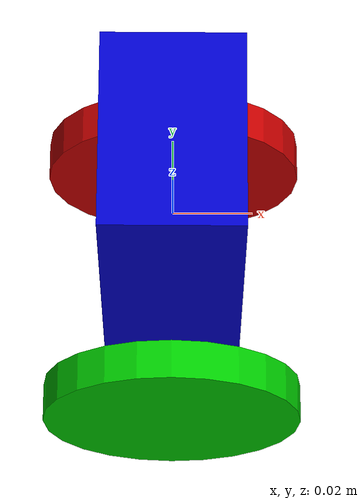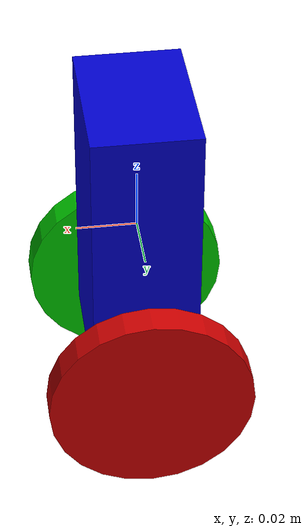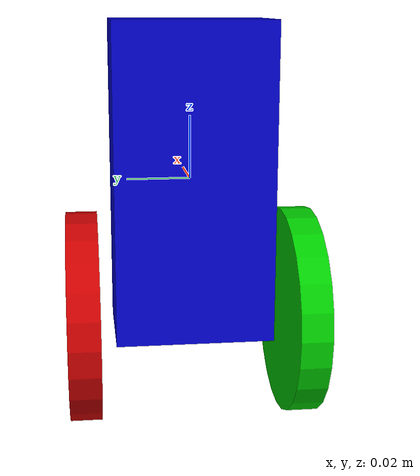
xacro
<?xml version="1.0"?>
<robot name="edumip141" xmlns:xacro="http://ros.org/wiki/xacro">

  <xacro:property name="wheel_separation" value="0.070" />
  <xacro:property name="wheel_radius" value="0.034" />
  <xacro:property name="wheel_width" value="0.010" />
  <xacro:property name="body_height" value="0.1" />
  <xacro:property name="body_width" value="0.050" />
  <xacro:property name="body_length" value="0.035" />
  <xacro:property name="pi" value="3.1415" />

  <material name="blue">
    <color rgba="0 0 0.8 1"/>
  </material>

  <material name="green">
    <color rgba="0 0.8 0 1"/>
  </material>

  <material name="red">
    <color rgba="0.8 0 0 1"/>
  </material>

  <xacro:macro name="default_inertial" params="mass">
    <inertial>
      <mass value="${mass}" />
      <inertia ixx="0.1" ixy="0.0" ixz="0.0" iyy="0.1" iyz="0.0" izz="0.1" />
    </inertial>
  </xacro:macro>

  <link name="edumip_body">
    <visual>
      <geometry>
	<box size="${body_length} ${body_width} ${body_height}"/>
      </geometry>
      <material name="blue"/>
    </visual>
    <collision>
      <geometry>
	<box size="${body_length} ${body_width} ${body_height}"/>
      </geometry>
    </collision>
    <xacro:default_inertial mass="1"/>
  </link>

  <xacro:macro name="wheel" params="color suffix reflect">

    <link name="wheel${suffix}">
      <visual>
        <!-- origin xyz="0 0 0" rpy="${wheel_separation/2} 0 0" / -->
        <origin xyz="0 0 0" rpy="0 0 0" />
        <geometry>
          <cylinder radius="${wheel_radius}" length="${wheel_width}"/>
        </geometry>
        <material name="${color}"/>
      </visual>
      <collision>
        <origin xyz="0 ${wheel_separation/2} 0" rpy="0 0 0" />
        <geometry>
          <cylinder radius="${wheel_radius}" length="${wheel_width}"/>
        </geometry>
      </collision>
      <xacro:default_inertial mass="0.4"/>
    </link>

    <joint name="joint${suffix}" type="continuous">
      <axis xyz="0 0 1" rpy="0 0 0" />
      <parent link="edumip_body"/>
      <child link="wheel${suffix}"/>
      <origin xyz="0 ${wheel_separation/2*reflect} -${body_height/2-0.005}" rpy="${pi/2} 0 0"/>
    </joint>

  </xacro:macro>

  <xacro:wheel color="green" suffix="L" reflect="-1" />
  <xacro:wheel color="red" suffix="R" reflect="1" />

</robot>
